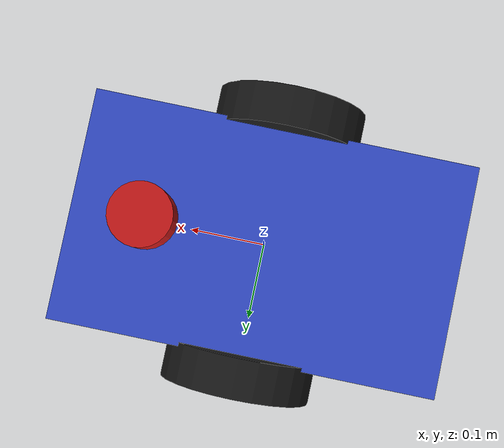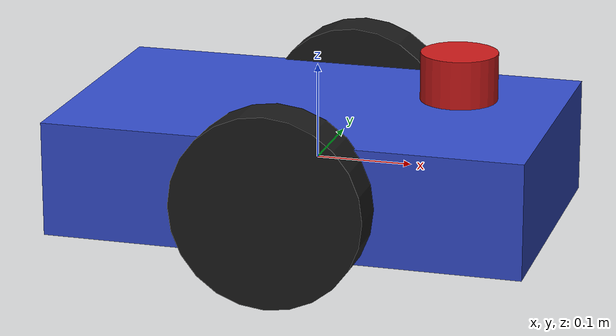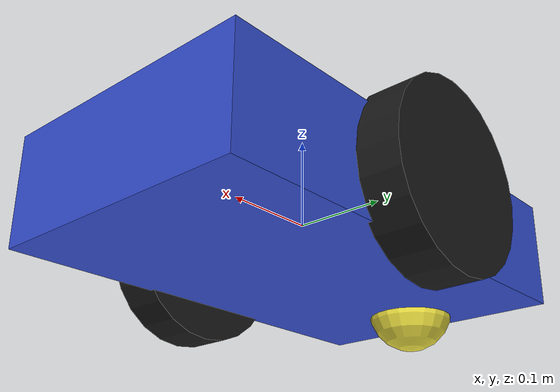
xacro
<?xml version="1.0"?>
<robot xmlns:xacro="http://www.ros.org/wiki/xacro" name="amr">
  <xacro:property name="wheel_r" value="0.1"/>
  <xacro:property name="wheel_w" value="0.05"/>
  <xacro:property name="sep" value="0.34"/>
  <xacro:property name="caster_r" value="0.05"/>

  <xacro:macro name="box_inertial" params="m x y z">
    <inertial>
      <mass value="${m}"/>
      <inertia ixx="${m*(y*y+z*z)/12}" iyy="${m*(x*x+z*z)/12}" izz="${m*(x*x+y*y)/12}" ixy="0" ixz="0" iyz="0"/>
    </inertial>
  </xacro:macro>

  <link name="base_link">
    <visual><geometry><box size="0.5 0.3 0.12"/></geometry><material name="blue"><color rgba="0.2 0.3 0.8 1"/></material></visual>
    <collision><geometry><box size="0.5 0.3 0.12"/></geometry></collision>
    <xacro:box_inertial m="8" x="0.5" y="0.3" z="0.12"/>
  </link>

  <xacro:macro name="wheel" params="name y">
    <link name="${name}_wheel">
      <visual><origin rpy="1.5708 0 0"/><geometry><cylinder radius="${wheel_r}" length="${wheel_w}"/></geometry><material name="black"><color rgba="0.1 0.1 0.1 1"/></material></visual>
      <collision><origin rpy="1.5708 0 0"/><geometry><cylinder radius="${wheel_r}" length="${wheel_w}"/></geometry></collision>
      <inertial><origin rpy="1.5708 0 0"/><mass value="1"/>
        <inertia ixx="${(3*wheel_r*wheel_r+wheel_w*wheel_w)/12}" iyy="${(3*wheel_r*wheel_r+wheel_w*wheel_w)/12}" izz="${wheel_r*wheel_r/2}" ixy="0" ixz="0" iyz="0"/></inertial>
    </link>
    <joint name="${name}_wheel_joint" type="continuous">
      <parent link="base_link"/><child link="${name}_wheel"/>
      <origin xyz="0 ${y} 0"/><axis xyz="0 1 0"/>
    </joint>
  </xacro:macro>
  <!-- base_link origin is at wheel axle height (z = wheel_r above ground) -->
  <xacro:wheel name="left" y="${sep/2}"/>
  <xacro:wheel name="right" y="${-sep/2}"/>

  <link name="caster">
    <visual><geometry><sphere radius="${caster_r}"/></geometry></visual>
    <collision><geometry><sphere radius="${caster_r}"/></geometry>
      <surface><friction><ode><mu>0</mu><mu2>0</mu2></ode></friction></surface></collision>
    <inertial><mass value="0.5"/><inertia ixx="0.0005" iyy="0.0005" izz="0.0005" ixy="0" ixz="0" iyz="0"/></inertial>
  </link>
  <joint name="caster_joint" type="fixed">
    <parent link="base_link"/><child link="caster"/><origin xyz="-0.2 0 ${-(wheel_r-caster_r)}"/>
  </joint>

  <link name="laser">
    <visual><geometry><cylinder radius="0.04" length="0.05"/></geometry><material name="red"><color rgba="0.8 0.1 0.1 1"/></material></visual>
    <inertial><mass value="0.1"/><inertia ixx="0.0001" iyy="0.0001" izz="0.0001" ixy="0" ixz="0" iyz="0"/></inertial>
  </link>
  <joint name="laser_joint" type="fixed">
    <parent link="base_link"/><child link="laser"/><origin xyz="0.15 0 0.1"/>
  </joint>

  <link name="imu_link">
    <inertial><mass value="0.01"/><inertia ixx="1e-5" iyy="1e-5" izz="1e-5" ixy="0" ixz="0" iyz="0"/></inertial>
  </link>
  <joint name="imu_joint" type="fixed">
    <parent link="base_link"/><child link="imu_link"/><origin xyz="0 0 0.07"/>
  </joint>

  <gazebo>
    <plugin filename="gz-sim-diff-drive-system" name="gz::sim::systems::DiffDrive">
      <left_joint>left_wheel_joint</left_joint>
      <right_joint>right_wheel_joint</right_joint>
      <wheel_separation>${sep}</wheel_separation>
      <wheel_radius>${wheel_r}</wheel_radius>
      <topic>/cmd_vel</topic>
      <odom_topic>/odom</odom_topic>
      <tf_topic>/tf</tf_topic>
      <frame_id>odom</frame_id>
      <child_frame_id>base_link</child_frame_id>
      <odom_publish_frequency>50</odom_publish_frequency>
    </plugin>
  </gazebo>

  <gazebo reference="laser">
    <sensor name="laser" type="gpu_lidar">
      <gz_frame_id>laser</gz_frame_id>
      <topic>/scan</topic>
      <update_rate>10</update_rate>
      <always_on>true</always_on>
      <lidar>
        <scan><horizontal><samples>360</samples><min_angle>-3.14159</min_angle><max_angle>3.14159</max_angle></horizontal></scan>
        <range><min>0.12</min><max>10.0</max></range>
      </lidar>
    </sensor>
  </gazebo>

  <gazebo reference="imu_link">
    <sensor name="imu" type="imu">
      <gz_frame_id>imu_link</gz_frame_id>
      <topic>/imu</topic>
      <update_rate>100</update_rate>
      <always_on>true</always_on>
    </sensor>
  </gazebo>
</robot>
